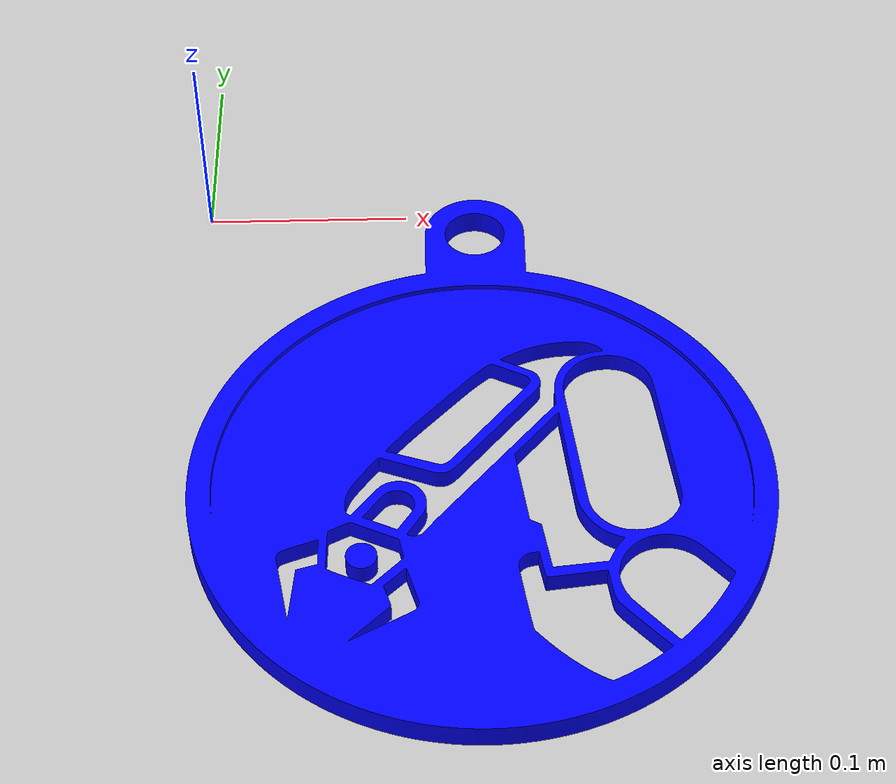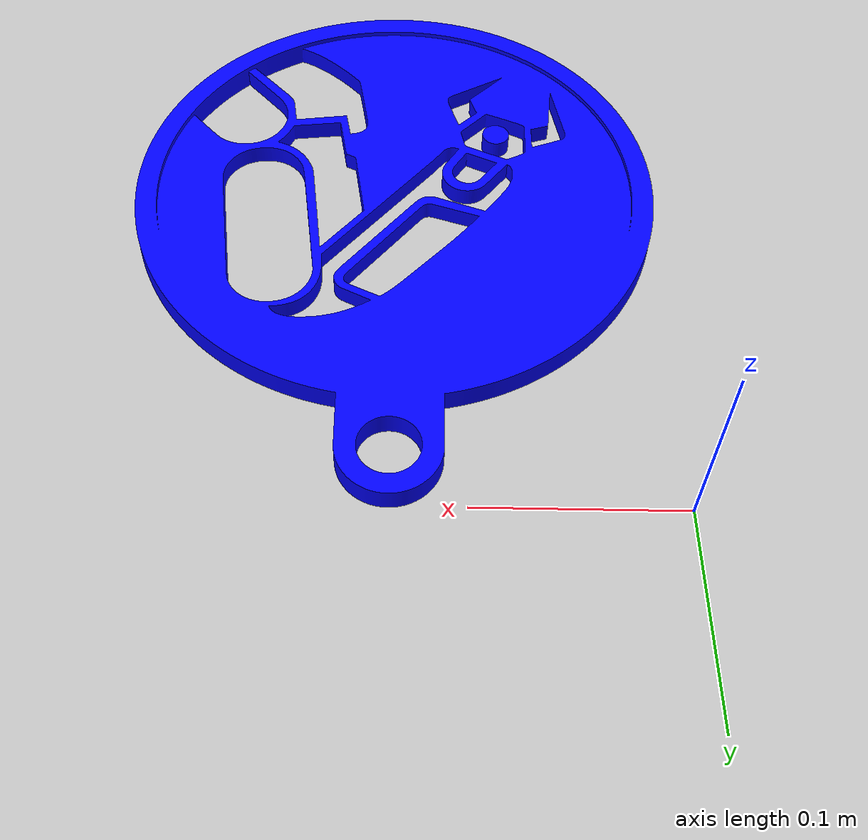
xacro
<?xml version="1.0"?>
<robot xmlns:xacro="http://www.ros.org/wiki/xacro" name="rover">

<link name="world">

</link>

<!-- defining chassis -->
<link name="logo">
    <inertial>
        <origin xyz="0.0 0.0 0.0" rpy="0.0 0.0 0.0"/>
        <mass value="1.0"/>
        <inertia ixx="0.0" ixy="0.0" ixz="0.0" iyy="0.0" iyz="0.0" izz="0.0"/>
    </inertial>
    <visual name="">
        <origin xyz="0.0 0.0 0.0" rpy="0.0 0.0 0.0"/>
        <geometry>
            <mesh filename="package://mobile_robot/meshes/erc_logo.STL" scale="0.005 0.005 0.005"/>
        </geometry>
        <material name="">
            <color rgba="0.0 0.0 1.0 1.0"/>
        </material>
    </visual>
    <collision>
        <origin xyz="0.0 0.0 0.0" rpy="0.0 0.0 0.0"/>
        <geometry>
            <mesh filename="package://mobile_robot/meshes/erc_logo.STL" scale="0.005 0.005 0.005"/>
        </geometry>
    </collision>
</link>

<gazebo reference="logo">
    <material>Gazebo/Blue</material>
    <turnGravityOff>true</turnGravityOff>
</gazebo>

<joint name="logo_joint" type="fixed">
    <origin xyz="0.0 0.0 0.0" rpy="1.57 0.0 0.0"/>
    <parent link="world"/>
    <child link="logo"/>
    <axis xyz="0.0 0.0 0.0"/>
    <limit lower="0.0" upper="0.0" effort="0.0" velocity="0.0"/>
</joint>

</robot>
